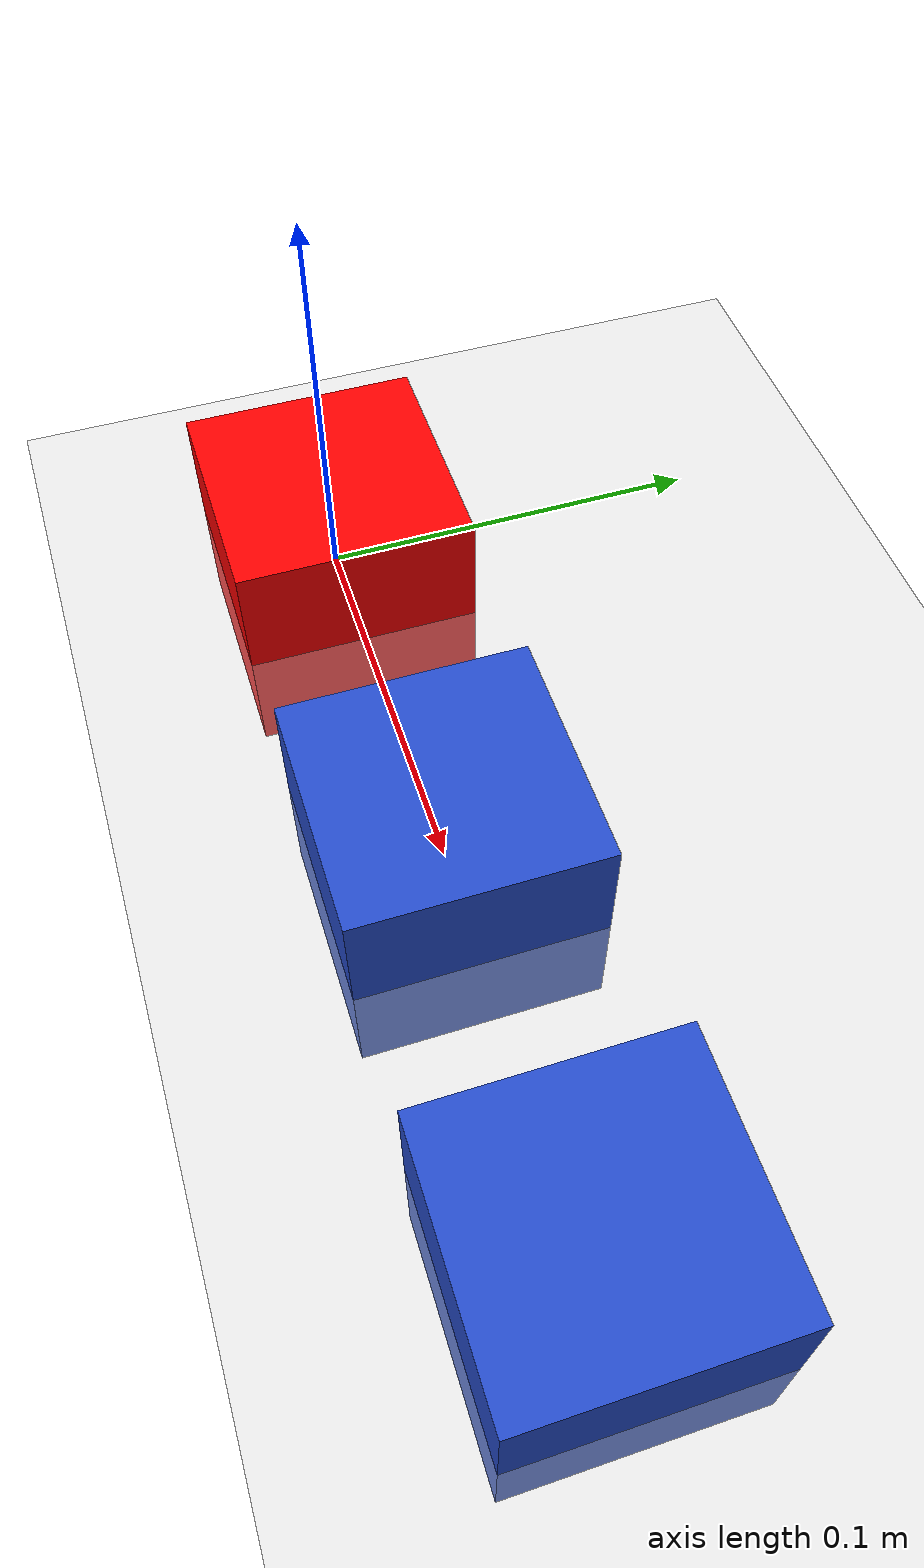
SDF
<?xml version="1.0" ?>
<sdf version="1.4">
  <world name="default">
    <include>
      <uri>model://ground_plane</uri>
    </include>

    <include>
      <uri>model://demo_cube</uri>
      <name>demo_cube1</name>
      <pose>0 0 0 0 0 0</pose>
    </include>

    <include>
      <uri>model://demo_cube</uri>
      <name>demo_cube2</name>
      <pose>0.1 0 0 0 0 0</pose>
    </include>
    <include>
      <uri>model://demo_cube</uri>
      <name>demo_cube3</name>
      <pose>0.2 0 0 0 0 0</pose>
    </include>

    <model name="demo_cube_X">
        <static>0</static>
        <link name='link'>
          <inertial>
            <mass>0.25</mass>
            <inertia>
              <ixx>0.001</ixx>
              <ixy>0.000000</ixy>
              <ixz>0.000000</ixz>
              <iyy>0.001</iyy>
              <iyz>0.000000</iyz>
              <izz>0.001</izz>
            </inertia>
          </inertial>
          <collision name='collision'>
            <geometry>
              <box>
                <size>0.060 0.060 0.060</size>
              </box>
            </geometry>
            <surface>
              <friction>
                <ode>
                  <mu>30.0</mu>
                  <mu2>30.0</mu2>
                </ode>
              </friction>
              <contact>
                <ode>
                  <kp>1000000.0</kp>
                  <kd>100.0</kd>
                  <max_vel>1.0</max_vel>
                  <min_depth>0.002</min_depth>
                </ode>
              </contact>
            </surface>
          </collision>
          <visual name='visual'>
            <geometry>
              <box>
                <size>0.060 0.060 0.060</size>
              </box>
            </geometry>
            <material>
              <ambient>1 0 0 1</ambient>
              <diffuse>1 0 0 1</diffuse>
              <specular>0.1 0.1 0.1 1</specular>
              <emissive>0 0 0 0</emissive>
            </material>
          </visual>
          <velocity_decay>
            <linear>0.000000</linear>
            <angular>0.000000</angular>
          </velocity_decay>
          <self_collide>0</self_collide>
          <kinematic>0</kinematic>
          <gravity>1</gravity>
        </link>
    </model>

    <include>
      <uri>model://sun</uri>
    </include>

    <light name='user_point_light_0' type='point'>
      <pose frame=''>0.573839 -0.613666 1 0 -0 0</pose>
      <diffuse>0.5 0.5 0.5 1</diffuse>
      <specular>0.1 0.1 0.1 1</specular>
      <attenuation>
        <range>20</range>
        <constant>0.5</constant>
        <linear>0.01</linear>
        <quadratic>0.001</quadratic>
      </attenuation>
      <cast_shadows>0</cast_shadows>
      <direction>0 0 -1</direction>
    </light>

    <atmosphere type='adiabatic'/>
    <scene>
      <sky>
        <clouds>
          <speed>12</speed>
        </clouds>
      </sky>
    </scene>

    <physics name='default_physics' default='0' type='ode'>
      <max_step_size>0.001</max_step_size>
      <real_time_factor>1</real_time_factor>
      <real_time_update_rate>1000</real_time_update_rate>
    </physics>

    <!-- reference to your plugin -->
    <plugin name="dynamic_world_plugin" filename="libdynamic_world_plugin.so">
      <update_frequency>1.0</update_frequency>
    </plugin>

  </world>
</sdf>

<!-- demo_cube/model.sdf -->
<sdf version='1.6'>
  <model name="demo_cube">
      <static>0</static>
      <link name='link'>
        <inertial>
          <mass>0.25</mass>
          <inertia>
            <ixx>0.001</ixx>
            <ixy>0.000000</ixy>
            <ixz>0.000000</ixz>
            <iyy>0.001</iyy>
            <iyz>0.000000</iyz>
            <izz>0.001</izz>
          </inertia>
        </inertial>
        <collision name='collision'>
          <geometry>
            <box>
              <size>0.060 0.060 0.060</size>
            </box>
          </geometry>
          <surface>
            <friction>
              <ode>
                <mu>30.0</mu>
                <mu2>30.0</mu2>
              </ode>
            </friction>
            <contact>
              <ode>
                <kp>1000000.0</kp>
                <kd>100.0</kd>
                <max_vel>1.0</max_vel>
                <min_depth>0.002</min_depth>
              </ode>
            </contact>
          </surface>
        </collision>
        <visual name='visual'>
          <geometry>
            <box>
              <size>0.060 0.060 0.060</size>
            </box>
          </geometry>
          <material>
            <script>
              <uri>file://media/materials/scripts/gazebo.material</uri>
              <name>Gazebo/Blue</name>
            </script>
          </material>
        </visual>
        <velocity_decay>
          <linear>0.000000</linear>
          <angular>0.000000</angular>
        </velocity_decay>
        <self_collide>0</self_collide>
        <kinematic>0</kinematic>
        <gravity>1</gravity>
      </link>
  </model>
</sdf>
